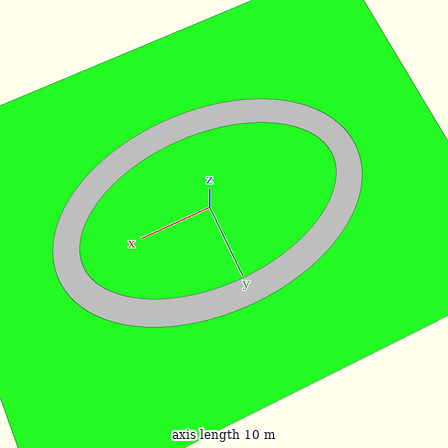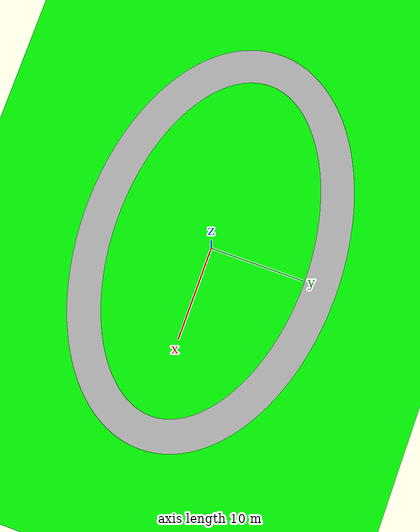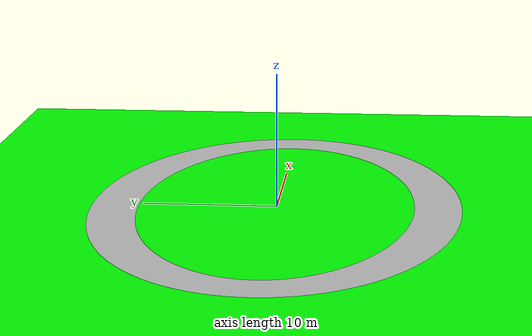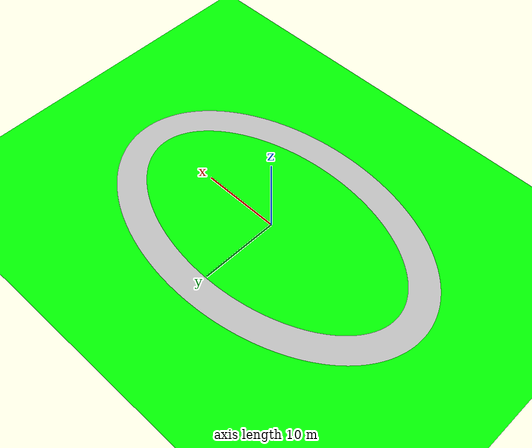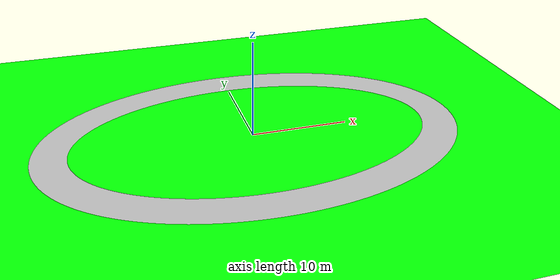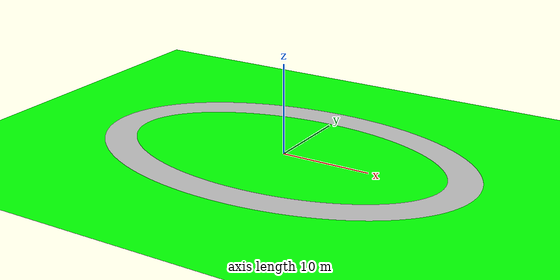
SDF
<sdf version='1.9'>
  <world name='oval_track'>
    <physics name='1ms' type='ignored'>
      <max_step_size>0.001</max_step_size>
      <real_time_factor>1</real_time_factor>
      <real_time_update_rate>1000</real_time_update_rate>
    </physics>
    <plugin name='gz::sim::systems::Physics' filename='gz-sim-physics-system'/>
    <plugin name='gz::sim::systems::UserCommands' filename='gz-sim-user-commands-system'/>
    <plugin name='gz::sim::systems::SceneBroadcaster' filename='gz-sim-scene-broadcaster-system'/>
    <plugin name='gz::sim::systems::Sensors' filename='gz-sim-sensors-system'>
      <render_engine>ogre2</render_engine>
    </plugin>
    <plugin name='gz::sim::systems::Contact' filename='gz-sim-contact-system'/>
    <plugin name='gz::sim::systems::Imu' filename='gz-sim-imu-system'/>
    <plugin
      filename="gz-sim-navsat-system"
      name="gz::sim::systems::NavSat">
    </plugin>
    <gravity>0 0 -9.8000000000000007</gravity>
    <magnetic_field>5.5644999999999998e-06 2.2875799999999999e-05 -4.2388400000000002e-05</magnetic_field>
    <atmosphere type='adiabatic'/>
    <scene>
      <ambient>0.400000006 0.400000006 0.400000006 1</ambient>
      <background>0.699999988 0.699999988 0.699999988 1</background>
      <shadows>true</shadows>
    </scene>
    <model name='ground_plane'>
      <static>true</static>
      <link name='link'>
        <collision name='collision'>
          <geometry>
            <plane>
              <normal>0 0 1</normal>
              <size>100 100</size>
            </plane>
          </geometry>
          <surface>
            <friction>
              <ode/>
            </friction>
            <bounce/>
            <contact/>
          </surface>
        </collision>
        <visual name='visual'>
          <geometry>
            <plane>
              <normal>0 0 1</normal>
              <size>100 100</size>
            </plane>
          </geometry>
          <material>
            <ambient>0 1 0 1</ambient>
            <diffuse>0 1 0 1</diffuse>
            <specular>0.1 0.1 0.1 1</specular>
          </material>
        </visual>
        <pose>0 0 0 0 0 0</pose>
        <inertial>
          <pose>0 0 0 0 0 0</pose>
          <mass>1</mass>
          <inertia>
            <ixx>1</ixx>
            <ixy>0</ixy>
            <ixz>0</ixz>
            <iyy>1</iyy>
            <iyz>0</iyz>
            <izz>1</izz>
          </inertia>
        </inertial>
        <enable_wind>false</enable_wind>
      </link>
      <pose>0 0 0 0 0 0</pose>
      <self_collide>false</self_collide>
    </model>
    <include>
      <uri>model://oval_track</uri>
      <pose>0 0 0.1 0 0 0</pose>
    </include>
    <light name='sun' type='directional'>
      <pose>0 0 10 0 0 0</pose>
      <cast_shadows>true</cast_shadows>
      <intensity>1</intensity>
      <direction>-0.5 0.10000000000000001 -0.90000000000000002</direction>
      <diffuse>0.800000012 0.800000012 0.800000012 1</diffuse>
      <specular>0.200000003 0.200000003 0.200000003 1</specular>
      <attenuation>
        <range>1000</range>
        <linear>0.0099999997764825821</linear>
        <constant>0.89999997615814209</constant>
        <quadratic>0.0010000000474974513</quadratic>
      </attenuation>
      <spot>
        <inner_angle>0</inner_angle>
        <outer_angle>0</outer_angle>
        <falloff>0</falloff>
      </spot>
    </light>
  </world>
</sdf>

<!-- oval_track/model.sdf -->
<sdf version="1.10">
  <model name="oval_track">
    <static>true</static>

    <link name="link">
      <visual name="visual">
        <geometry>
          <mesh>
            <uri>model://oval_track/meshes/oval_track.dae</uri>
          </mesh>
        </geometry>
      </visual>

      <collision name="collision">
        <geometry>
          <mesh>
            <uri>model://oval_track/meshes/oval_track.dae</uri>
          </mesh>
        </geometry>
      </collision>
    </link>
  </model>
</sdf>
